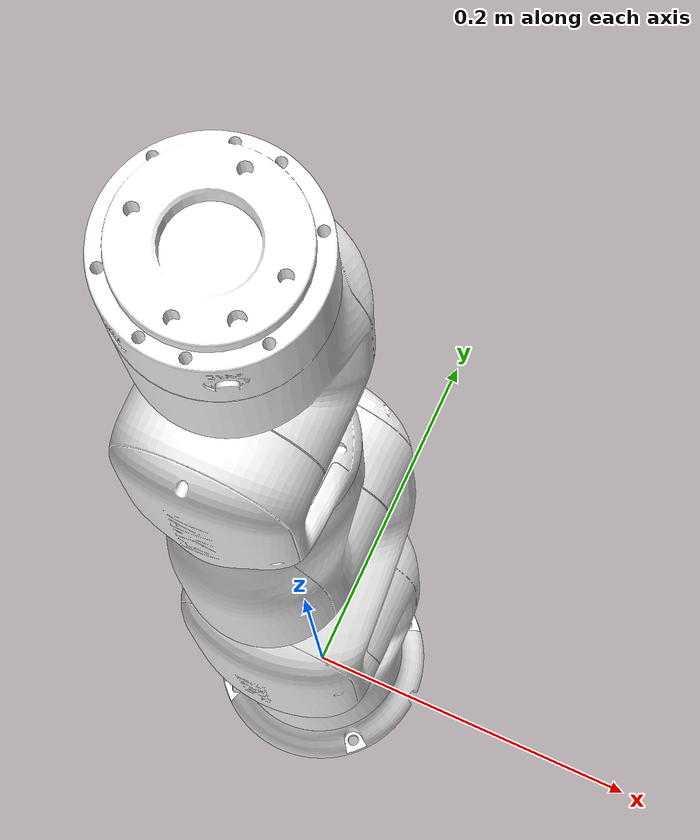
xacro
<?xml version="1.0" encoding="utf-8"?>

<robot name="jaka_minicobo" xmlns:xacro="http://wiki.ros.org/xacro">

  <xacro:include filename="$(find jaka_description)/urdf/jaka_minicobo/arm_body.xacro" />

  <!-- Macro for inertia matrix -->
  <xacro:macro name="sphere_inertial_matrix" params="m r">
    <inertial>
      <mass value="${m}" />
        <inertia ixx="${2*m*r*r/5}" ixy="0" ixz="0" iyy="${2*m*r*r/5}" iyz="0"  izz="${2*m*r*r/5}" />
    </inertial>
  </xacro:macro>

  <xacro:macro name="cylinder_inertial_matrix" params="m r h">
    <inertial>
      <mass value="${m}" />
        <inertia ixx="${m*(3*r*r+h*h)/12}" ixy = "0" ixz = "0" iyy="${m*(3*r*r+h*h)/12}" iyz = "0" izz="${m*r*r/2}" />
    </inertial>
  </xacro:macro>

  <xacro:macro name="box_inertial_matrix" params="m w h d">
    <inertial>
      <mass value="${m}" />
        <inertia ixx="${m*(h*h+d*d)/12}" ixy = "0" ixz = "0" iyy="${m*(w*w+d*d)/12}" iyz = "0" izz="${m*(w*w+h*h)/12}" />
    </inertial>
  </xacro:macro>

  <!-- MINICOBO -->
  <link name="world" />

  <joint name="world_joint" type="fixed">
      <parent link="world" />
      <child link = "base_footprint" />
      <origin xyz="0 0 0" rpy="0 0 0" />
  </joint>

  <link name="base_footprint" >
    </link >

  <xacro:arm_body parent_prefix = "base_footprint">
    <origin xyz="0 0 0" rpy="0 0 0" />
  </xacro:arm_body>

</robot>

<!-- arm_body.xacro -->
<robot xmlns:xacro="http://ros.org/wiki/xacro" name="arm_body">
  <xacro:macro name="arm_body" params="parent_prefix *joint_pose">

  <xacro:arg name="default_velocity" default="1" />

  <link name="arm_base_link">
    <inertial>
      <origin xyz="-0.00018006 1.07690000000008E-05 0.013295" rpy="0 0 0" />
      <mass value="0.28093" />
      <inertia ixx="0.00024785" ixy="-3.0829E-08" ixz="-5.1975E-07" iyy="0.0002461" iyz="-3.19E-08" izz="0.00045567" />
    </inertial>
    <visual>
      <origin xyz="0 0 0" rpy="1.5707963267949 0 0" />
      <geometry>
        <mesh filename="package://jaka_description/meshes/jaka_minicobo_meshes/link_0.STL" />
      </geometry>
      <material name="">
        <color rgba="1 1 1 1" />
      </material>
    </visual>
    <collision>
      <origin xyz="0 0 0" rpy="1.5707963267949 0 0" />
      <geometry>
        <mesh filename="package://jaka_description/meshes/jaka_minicobo_meshes/link_0.STL" />
      </geometry>
    </collision>
  </link>

  <joint name="arm_base_joint" type="fixed">
    <xacro:insert_block name="joint_pose"/>
    <parent link="${parent_prefix}" />
    <child link="arm_base_link" />
    <axis xyz="0 0 0" />
  </joint>

  <link name="shoulder_pan_link">
    <inertial>
      <origin xyz="9.9123E-05 0.01341 0.09734" rpy="0 0 0" />
      <mass value="1.3529" />
      <inertia ixx="0.0054998" ixy="-2.716E-07" ixz="-3.4974E-06" iyy="0.0054317" iyz="0.00069142" izz="0.0016731" />
    </inertial>
    <visual>
      <origin xyz="0 0 0" rpy="1.5707963267949 0 0" />
      <geometry>
        <mesh filename="package://jaka_description/meshes/jaka_minicobo_meshes/link_1.STL" />
      </geometry>
      <material name="">
        <color rgba="1 1 1 1" />
      </material>
    </visual>
    <collision>
      <origin xyz="0 0 0" rpy="1.5707963267949 0 0" />
      <geometry>
        <mesh filename="package://jaka_description/meshes/jaka_minicobo_meshes/link_1.STL" />
      </geometry>
    </collision>
  </link>

  <joint name="shoulder_pan_joint" type="continuous">
    <origin xyz="0 0 0.028" rpy="0 0 0" />
    <parent link="arm_base_link" />
    <child link="shoulder_pan_link" />
    <axis xyz="0 0 1" />
    <limit lower="-3" upper="3" effort="49" velocity="$(arg default_velocity)" />
  </joint>

  <link name="shoulder_lift_link">
    <inertial>
      <origin xyz="-2.5363E-05 0.090565 0.00442809999999999" rpy="0 0 0" />
      <mass value="1.1377" />
      <inertia ixx="0.0082035" ixy="-2.0097E-06" ixz="9.4198E-07" iyy="0.0021505" iyz="-0.0025443" izz="0.0072548" />
    </inertial>
    <visual>
      <origin xyz="0 0 0" rpy="1.5707963267949 0 0" />
      <geometry>
        <mesh filename="package://jaka_description/meshes/jaka_minicobo_meshes/link_2.STL" />
      </geometry>
      <material name="">
        <color rgba="1 1 1 1" />
      </material>
    </visual>
    <collision>
      <origin xyz="0 0 0" rpy="1.5707963267949 0 0" />
      <geometry>
        <mesh filename="package://jaka_description/meshes/jaka_minicobo_meshes/link_2.STL" />
      </geometry>
    </collision>
  </link>

  <joint name="shoulder_lift_joint" type="continuous">
    <origin xyz="0 0.006 0.159" rpy="1.5708 0 0" />
    <parent link="shoulder_pan_link" />
    <child link="shoulder_lift_link" />
    <axis xyz="0 0 1" />
    <limit lower="-3" upper="3" effort="49" velocity="$(arg default_velocity)" />
  </joint>

  <link name="elbow_link">
    <inertial>
      <origin xyz="-4.0304E-05 0.042188 0.012484" rpy="0 0 0" />
      <mass value="0.81111" />
      <inertia ixx="0.0022134" ixy="-1.6101E-06" ixz="-8.7803E-07" iyy="0.00070261" iyz="-0.00022493" izz="0.0021173" />
    </inertial>
    <visual>
      <origin xyz="0 0 0" rpy="1.5707963267949 0 0" />
      <geometry>
        <mesh filename="package://jaka_description/meshes/jaka_minicobo_meshes/link_3.STL" />
      </geometry>
      <material name="">
        <color rgba="1 1 1 1" />
      </material>
    </visual>
    <collision>
      <origin xyz="0 0 0" rpy="1.5707963267949 0 0" />
      <geometry>
        <mesh filename="package://jaka_description/meshes/jaka_minicobo_meshes/link_3.STL" />
      </geometry>
    </collision>
  </link>

  <joint name="elbow_joint" type="continuous">
    <origin xyz="0 0.210 0" rpy="0 0 0" />
    <parent link="shoulder_lift_link" />
    <child link="elbow_link" />
    <axis xyz="0 0 1" />
    <limit lower="-3" upper="3" effort="49" velocity="$(arg default_velocity)" />
  </joint>

  <link name="wrist_1_link">
    <inertial>
      <origin xyz="2.9484E-06 -0.025942 0.045273" rpy="0 0 0" />
      <mass value="0.3089" />
      <inertia ixx="0.00048582" ixy="3.9055E-09" ixz="1.7169E-08" iyy="0.0004663" iyz="-0.00011075" izz="0.00023489" />
    </inertial>
    <visual>
      <origin xyz="0 0 0" rpy="1.5707963267949 0 0" />
      <geometry>
        <mesh filename="package://jaka_description/meshes/jaka_minicobo_meshes/link_4.STL" />
      </geometry>
      <material name="">
        <color rgba="1 1 1 1" />
      </material>
    </visual>
    <collision>
      <origin xyz="0 0 0" rpy="1.5707963267949 0 0" />
      <geometry>
        <mesh filename="package://jaka_description/meshes/jaka_minicobo_meshes/link_4.STL" />
      </geometry>
    </collision>
  </link>

  <joint name="wrist_1_joint" type="continuous">
    <origin xyz="0 0.1303 0" rpy="-1.5708 0 0" />
    <parent link="elbow_link" />
    <child link="wrist_1_link" />
    <axis xyz="0 0 1" />
    <limit lower="-3" upper="3" effort="11" velocity="$(arg default_velocity)" />
  </joint>

  <link name="wrist_2_link">
    <inertial>
      <origin xyz="1.9626E-06 0.044545 -0.010248" rpy="0 0 0" />
      <mass value="0.69157" />
      <inertia ixx="0.0016775" ixy="-1.4833E-07" ixz="2.784E-08" iyy="0.00053632" iyz="0.00016462" izz="0.001608" />
    </inertial>
    <visual>
      <origin xyz="0 0 0" rpy="1.5707963267949 0 0" />
      <geometry>
        <mesh filename="package://jaka_description/meshes/jaka_minicobo_meshes/link_5.STL" />
      </geometry>
      <material name="">
        <color rgba="1 1 1 1" />
      </material>
    </visual>
    <collision>
      <origin xyz="0 0 0" rpy="1.5707963267949 0 0" />
      <geometry>
        <mesh filename="package://jaka_description/meshes/jaka_minicobo_meshes/link_5.STL" />
      </geometry>
    </collision>
  </link>

  <joint name="wrist_2_joint" type="continuous">
    <origin xyz="0 0 0.0802" rpy="1.5708 0 0" />
    <parent link="wrist_1_link" />
    <child link="wrist_2_link" />
    <axis xyz="0 0 1" />
    <limit lower="-3" upper="3" effort="11" velocity="$(arg default_velocity)" />
  </joint>

  <link name="wrist_3_link">
    <inertial>
      <origin xyz="-1.7983E-05 -3.74010000000012E-05 -0.020293" rpy="0 0 0" />
      <mass value="0.14776" />
      <inertia ixx="6.7361E-05" ixy="-2.38E-08" ixz="6.9658E-08" iyy="6.8321E-05" iyz="8.9675E-08" izz="0.00010506" />
    </inertial>
    <visual>
      <origin xyz="0 0 0" rpy="1.5707963267949 0 0" />
      <geometry>
        <mesh filename="package://jaka_description/meshes/jaka_minicobo_meshes/link_6.STL" />
      </geometry>
      <material name="">
        <color rgba="1 1 1 1" />
      </material>
    </visual>
    <collision>
      <origin xyz="0 0 0" rpy="1.5707963267949 0 0" />
      <geometry>
        <mesh filename="package://jaka_description/meshes/jaka_minicobo_meshes/link_6.STL" />
      </geometry>
    </collision>
  </link>

  <joint name="wrist_3_joint" type="continuous">
    <origin xyz="0 0.1593 0" rpy="-1.5708 0 0" />
    <parent link="wrist_2_link" />
    <child link="wrist_3_link" />
    <axis xyz="0 0 1" />
    <limit lower="-3" upper="3" effort="11" velocity="$(arg default_velocity)" />
  </joint>

  <!-- Transmissions for ROS Control -->
  <xacro:macro name="transmission_block" params="joint_name">
    <transmission name="${joint_name}_trans">
      <type>transmission_interface/SimpleTransmission</type>
      <joint name="${joint_name}">
        <hardwareInterface>hardware_interface/PositionJointInterface</hardwareInterface>
      </joint>
      <actuator name="${joint_name}_motor">
        <hardwareInterface>hardware_interface/PositionJointInterface</hardwareInterface>
        <mechanicalReduction>1</mechanicalReduction>
      </actuator>
    </transmission>
  </xacro:macro>

  <xacro:transmission_block joint_name="shoulder_pan_joint"/>
  <xacro:transmission_block joint_name="shoulder_lift_joint"/>
  <xacro:transmission_block joint_name="elbow_joint"/>
  <xacro:transmission_block joint_name="wrist_1_joint"/>
  <xacro:transmission_block joint_name="wrist_2_joint"/>
  <xacro:transmission_block joint_name="wrist_3_joint"/>

	<!-- ros_control plugin -->
  <gazebo>
    <plugin name="gazebo_ros_control" filename="libgazebo_ros_control.so">
      <robotNamespace>/jaka_minicobo</robotNamespace>
      <robotSimType>gazebo_ros_control/DefaultRobotHWSim</robotSimType>
      <legacyModeNS>true</legacyModeNS>
    </plugin>
  </gazebo>

  </xacro:macro>
</robot>
